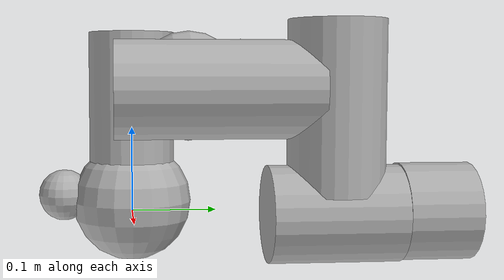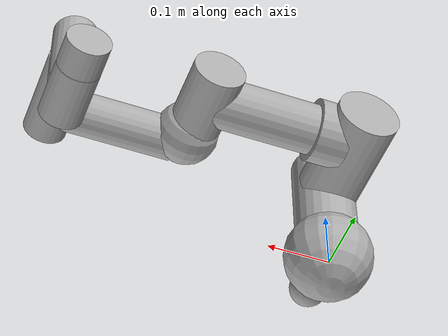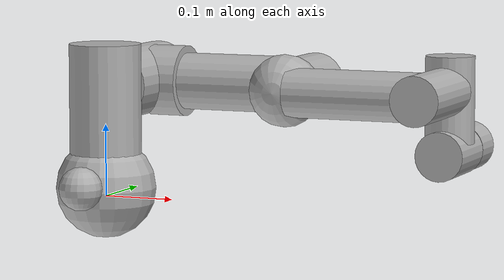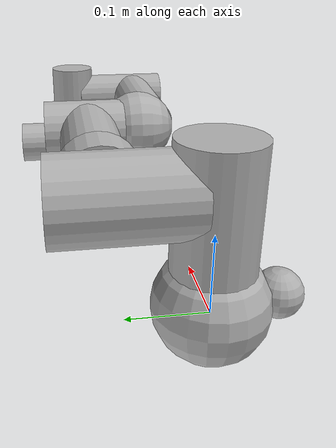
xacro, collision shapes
<?xml version="1.0"?>
<robot xmlns:xacro="http://ros.org/wiki/xacro"
       name="ur3e" >

  <!--
  Per https://github.com/ros-industrial/universal_robot/blob/melodic-devel/ur_description/package.xml
  the ur_description package from which these files are derived is BSD licensed.
-->

  <!-- ur3e -->
  <xacro:include filename="ur3e.urdf.xacro" />

  <!-- arm -->
  <!-- Do not limit all collision shapes to be spheres -->
  <!-- We limit joint limits to [-pi, pi] rather than the full range [-2pi, 2pi]
       since the larger limits cause problems with planning. -->
  <xacro:ur3e_robot prefix="ur_" joint_limited="true"
  sphere_only_collision_shapes="false" />
</robot>

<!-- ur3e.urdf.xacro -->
<robot xmlns:xacro="http://ros.org/wiki/xacro" xmlns:drake="https://drake.mit.edu">

<!--
  TODO(calderpg-tri, sammy-tri, ggould-tri) The acceleration limits in this
  file are wrong. Try to find the right value.
-->

  <xacro:include filename="ur.transmission.xacro" />

   <xacro:macro name="cylinder_inertial" params="radius length mass *origin">
    <inertial>
      <mass value="${mass}" />
      <xacro:insert_block name="origin" />
      <inertia ixx="${0.0833333 * mass * (3 * radius * radius + length * length)}" ixy="0.0" ixz="0.0"
        iyy="${0.0833333 * mass * (3 * radius * radius + length * length)}" iyz="0.0"
        izz="${0.5 * mass * radius * radius}" />
    </inertial>
  </xacro:macro>

  <xacro:macro name="ur3e_robot" params="prefix joint_limited
    shoulder_pan_lower_limit:=${-pi}    shoulder_pan_upper_limit:=${pi}
    shoulder_lift_lower_limit:=${-pi}    shoulder_lift_upper_limit:=${pi}
    elbow_joint_lower_limit:=${-pi}    elbow_joint_upper_limit:=${pi}
    wrist_1_lower_limit:=${-pi}    wrist_1_upper_limit:=${pi}
    wrist_2_lower_limit:=${-pi}    wrist_2_upper_limit:=${pi}
    wrist_3_lower_limit:=${-pi}    wrist_3_upper_limit:=${pi}
    transmission_hw_interface:=hardware_interface/PositionJointInterface
    safety_limits:=false safety_pos_margin:=0.15
    safety_k_position:=20
    sphere_only_collision_shapes:=False">

    <!-- Inertia parameters -->
    <xacro:property name="base_mass" value="2.0" />  <!-- This mass might be incorrect -->
    <xacro:property name="shoulder_mass" value="2.0" />
    <xacro:property name="upper_arm_mass" value="3.42" />
    <xacro:property name="forearm_mass" value="1.26" />
    <xacro:property name="wrist_1_mass" value="0.8" />
    <xacro:property name="wrist_2_mass" value="0.8" />
    <xacro:property name="wrist_3_mass" value="0.35" />

    <xacro:property name="shoulder_cog" value="0.0 -0.02 0.0" />
    <xacro:property name="upper_arm_cog" value="0.13 0.0 0.1157" />
    <xacro:property name="forearm_cog" value="0.05 0.0 0.0238" />
    <xacro:property name="wrist_1_cog" value="0.0 0.0 0.01" />
    <xacro:property name="wrist_2_cog" value="0.0 0.0 0.01" />
    <xacro:property name="wrist_3_cog" value="0.0 0.0 -0.02" />

    <!-- Kinematic model -->
    <!-- Properties from urcontrol.conf -->
    <xacro:property name="d1" value="0.152" />
    <xacro:property name="a2" value="-0.244" />
    <xacro:property name="a3" value="-0.213" />
    <xacro:property name="d4" value="0.104" />
    <xacro:property name="d5" value="0.085" />
    <xacro:property name="d6" value="0.092" />

    <!-- Arbitrary offsets for shoulder/elbow joints -->
    <xacro:property name="shoulder_offset" value="0.120" />  <!-- measured from model -->
    <xacro:property name="elbow_offset" value="-0.093" /> <!-- measured from model -->

    <!-- link lengths used in model -->
    <xacro:property name="shoulder_height" value="${d1}" />
    <xacro:property name="upper_arm_length" value="${-a2}" />
    <xacro:property name="forearm_length" value="${-a3}" />
    <xacro:property name="wrist_1_length" value="${d4}" />
    <xacro:property name="wrist_2_length" value="${d5}" />
    <xacro:property name="wrist_3_length" value="${d6}" />

    <link name="${prefix}base_link" >
      <visual>
        <origin rpy="0 0 0" xyz="0.0 0.0 0.0"/>
        <geometry>
          <mesh filename="base.obj"/>
        </geometry>
        <material name="LightGrey">
          <color rgba="0.7 0.7 0.7 1.0"/>
        </material>
      </visual>
      <xacro:if value="${sphere_only_collision_shapes}">
        <!-- Base joint -->
        <collision>
          <origin rpy="0 0 0" xyz="0.0 0.0 0.0"/>
          <geometry>
            <sphere radius="0.065"/>
          </geometry>
        </collision>
        <collision>
          <origin rpy="0 0 0" xyz="0.0 0.0 0.02"/>
          <geometry>
            <sphere radius="0.065"/>
          </geometry>
        </collision>
        <collision>
          <origin rpy="0 0 0" xyz="0.0 0.0 0.07"/>
          <geometry>
            <sphere radius="0.055"/>
          </geometry>
        </collision>
        <!-- Cable connector -->
        <collision>
          <origin rpy="0 0 0" xyz="0.0 -0.08 0.02"/>
          <geometry>
            <sphere radius="0.03"/>
          </geometry>
        </collision>
      </xacro:if>
      <xacro:unless value="${sphere_only_collision_shapes}">
        <!-- Base joint -->
        <collision>
          <origin rpy="0 0 0" xyz="0.0 0.0 0.012"/>
          <geometry>
            <sphere radius="0.07"/>
          </geometry>
        </collision>
        <!-- Cable connector -->
        <collision>
          <origin rpy="0 0 0" xyz="0.0 -0.08 0.02"/>
          <geometry>
            <sphere radius="0.03"/>
          </geometry>
        </collision>
      </xacro:unless>
      <xacro:cylinder_inertial radius="0.075" length="0.038" mass="${base_mass}">
        <origin xyz="0.0 0.0 0.0" rpy="0 0 0" />
      </xacro:cylinder_inertial>
    </link>

    <joint name="${prefix}shoulder_pan_joint" type="revolute">
      <parent link="${prefix}base_link" />
      <child link = "${prefix}shoulder_link" />
      <origin xyz="0.0 0.0 ${shoulder_height}" rpy="0.0 0.0 0.0" />
      <axis xyz="0 0 1" />
      <xacro:unless value="${joint_limited}">
        <limit lower="${-2.0 * pi}" upper="${2.0 * pi}" effort="330.0" velocity="3.14" drake:acceleration="2.5"/>
        <xacro:if value="${safety_limits}">
          <safety_controller soft_lower_limit="${-2.0 * pi + safety_pos_margin}" soft_upper_limit="${2.0 * pi - safety_pos_margin}" k_position="${safety_k_position}" k_velocity="0.0"/>
        </xacro:if>
      </xacro:unless>
      <xacro:if value="${joint_limited}">
        <limit lower="${shoulder_pan_lower_limit}" upper="${shoulder_pan_upper_limit}" effort="330.0" velocity="3.14" drake:acceleration="2.5"/>
        <xacro:if value="${safety_limits}">
          <safety_controller soft_lower_limit="${shoulder_pan_lower_limit + safety_pos_margin}" soft_upper_limit="${shoulder_pan_upper_limit - safety_pos_margin}" k_position="${safety_k_position}" k_velocity="0.0"/>
        </xacro:if>
      </xacro:if>
      <dynamics damping="0.0" friction="0.0"/>
    </joint>

    <link name="${prefix}shoulder_link">
      <visual>
        <origin rpy="0 0 0" xyz="0.0 0.0 0.0"/>
        <geometry>
          <mesh filename="shoulder.obj"/>
        </geometry>
        <material name="LightGrey">
          <color rgba="0.7 0.7 0.7 1.0"/>
        </material>
      </visual>
      <xacro:if value="${sphere_only_collision_shapes}">
        <collision>
          <origin rpy="0 0 0" xyz="0.0 0.01 0.00"/>
          <geometry>
            <sphere radius="0.07"/>
          </geometry>
        </collision>
        <collision>
          <origin rpy="0 0 0" xyz="0.0 0.06 0.00"/>
          <geometry>
            <sphere radius="0.0525"/>
          </geometry>
        </collision>
        <collision>
          <origin rpy="0 0 0" xyz="0.0 0.11 0.00"/>
          <geometry>
            <sphere radius="0.0525"/>
          </geometry>
        </collision>
      </xacro:if>
      <xacro:unless value="${sphere_only_collision_shapes}">
        <collision>
          <origin rpy="0 0 0" xyz="0.0 0.0 -0.02"/>
          <geometry>
            <cylinder radius="0.05" length="0.16"/>
          </geometry>
        </collision>
      </xacro:unless>
      <xacro:cylinder_inertial radius="0.075" length="0.178" mass="${shoulder_mass}">
        <origin xyz="0.0 0.0 0.0" rpy="0 0 0" />
      </xacro:cylinder_inertial>
    </link>

    <joint name="${prefix}shoulder_lift_joint" type="revolute">
      <parent link="${prefix}shoulder_link" />
      <child link = "${prefix}upper_arm_link" />
      <origin xyz="0.0 ${shoulder_offset} 0.0" rpy="0.0 ${pi / 2.0} 0.0" />
      <axis xyz="0 1 0" />
      <xacro:unless value="${joint_limited}">
        <limit lower="${-2.0 * pi}" upper="${2.0 * pi}" effort="330.0" velocity="3.14" drake:acceleration="2.5"/>
        <xacro:if value="${safety_limits}">
          <safety_controller soft_lower_limit="${-2.0 * pi + safety_pos_margin}" soft_upper_limit="${2.0 * pi - safety_pos_margin}" k_position="${safety_k_position}" k_velocity="0.0"/>
        </xacro:if>
      </xacro:unless>
      <xacro:if value="${joint_limited}">
        <limit lower="${shoulder_lift_lower_limit}" upper="${shoulder_lift_upper_limit}" effort="330.0" velocity="3.14" drake:acceleration="2.5"/>
        <xacro:if value="${safety_limits}">
          <safety_controller soft_lower_limit="${shoulder_lift_lower_limit + safety_pos_margin}" soft_upper_limit="${shoulder_lift_upper_limit - safety_pos_margin}" k_position="${safety_k_position}" k_velocity="0.0"/>
        </xacro:if>
      </xacro:if>
      <dynamics damping="0.0" friction="0.0"/>
    </joint>

    <link name="${prefix}upper_arm_link">
      <visual>
        <origin rpy="0 0 0" xyz="0.0 0.0 0.0"/>
        <geometry>
          <mesh filename="upperarm.obj"/>
        </geometry>
        <material name="LightGrey">
          <color rgba="0.7 0.7 0.7 1.0"/>
        </material>
      </visual>
      <xacro:if value="${sphere_only_collision_shapes}">
        <collision>
          <origin rpy="0 0 0" xyz="0.0 0.02 0.01"/>
          <geometry>
            <sphere radius="0.06"/>
          </geometry>
        </collision>
        <collision>
          <origin rpy="0 0 0" xyz="0.0 0.00 0.05"/>
          <geometry>
            <sphere radius="0.05"/>
          </geometry>
        </collision>
        <collision>
          <origin rpy="0 0 0" xyz="0.0 0.00 0.09"/>
          <geometry>
            <sphere radius="0.04"/>
          </geometry>
        </collision>
        <collision>
          <origin rpy="0 0 0" xyz="0.0 0.00 0.12"/>
          <geometry>
            <sphere radius="0.04"/>
          </geometry>
        </collision>
        <collision>
          <origin rpy="0 0 0" xyz="0.0 0.00 0.15"/>
          <geometry>
            <sphere radius="0.04"/>
          </geometry>
        </collision>
        <collision>
          <origin rpy="0 0 0" xyz="0.0 0.00 0.18"/>
          <geometry>
            <sphere radius="0.04"/>
          </geometry>
        </collision>
        <collision>
          <origin rpy="0 0 0" xyz="0.0 0.00 0.21"/>
          <geometry>
            <sphere radius="0.045"/>
          </geometry>
        </collision>
        <collision>
          <origin rpy="0 0 0" xyz="0.0 0.02 ${upper_arm_length - 0.005}"/>
          <geometry>
            <sphere radius="0.05"/>
          </geometry>
        </collision>
        <collision>
          <origin rpy="0 0 0" xyz="0.0 -0.02 ${upper_arm_length - 0.005}"/>
          <geometry>
            <sphere radius="0.05"/>
          </geometry>
        </collision>
      </xacro:if>
      <xacro:unless value="${sphere_only_collision_shapes}">
        <collision>
          <origin rpy="${pi/2.0} 0 0" xyz="0.0 -0.02 0.0"/>
          <geometry>
            <cylinder radius="0.05" length="0.16"/>
          </geometry>
        </collision>
        <collision>
          <origin rpy="0 0 0" xyz="0.0 0.0 0.045"/>
          <geometry>
            <cylinder radius="0.05" length="0.051"/>
          </geometry>
        </collision>
        <collision>
          <origin rpy="0 0 0" xyz="0.0 0.0 ${upper_arm_length/2.0 + 0.005}"/>
          <geometry>
            <cylinder radius="0.04" length="0.21"/>
          </geometry>
        </collision>
        <collision>
          <origin rpy="${pi/2.0} 0 0" xyz="0.0 0.005 ${upper_arm_length - 0.001}"/>
          <geometry>
            <cylinder radius="0.041" length="0.11"/>
          </geometry>
        </collision>
      </xacro:unless>
      <xacro:cylinder_inertial radius="0.075" length="${-a2}" mass="${upper_arm_mass}">
        <origin xyz="0.0 0.0 ${-a2/2.0}" rpy="0 0 0" />
      </xacro:cylinder_inertial>
    </link>

    <joint name="${prefix}elbow_joint" type="revolute">
      <parent link="${prefix}upper_arm_link" />
      <child link = "${prefix}forearm_link" />
      <origin xyz="0.0 ${elbow_offset} ${upper_arm_length}" rpy="0.0 0.0 0.0" />
      <axis xyz="0 1 0" />
      <xacro:unless value="${joint_limited}">
        <limit lower="${-pi}" upper="${pi}" effort="150.0" velocity="3.14" drake:acceleration="2.5"/>
        <xacro:if value="${safety_limits}">
          <safety_controller soft_lower_limit="${-2.0 * pi + safety_pos_margin}" soft_upper_limit="${2.0 * pi - safety_pos_margin}" k_position="${safety_k_position}" k_velocity="0.0"/>
        </xacro:if>
      </xacro:unless>
      <xacro:if value="${joint_limited}">
        <limit lower="${elbow_joint_lower_limit}" upper="${elbow_joint_upper_limit}" effort="150.0" velocity="3.14" drake:acceleration="2.5"/>
        <xacro:if value="${safety_limits}">
          <safety_controller soft_lower_limit="${elbow_joint_lower_limit + safety_pos_margin}" soft_upper_limit="${elbow_joint_upper_limit - safety_pos_margin}" k_position="${safety_k_position}" k_velocity="0.0"/>
        </xacro:if>
      </xacro:if>
      <dynamics damping="0.0" friction="0.0"/>
    </joint>

    <link name="${prefix}forearm_link">
      <visual>
        <origin rpy="0 0 0" xyz="0.0 0.0 0.0"/>
        <geometry>
          <mesh filename="forearm.obj"/>
        </geometry>
        <material name="LightGrey">
          <color rgba="0.7 0.7 0.7 1.0"/>
        </material>
      </visual>
      <xacro:if value="${sphere_only_collision_shapes}">
        <collision>
          <origin rpy="0 0 0" xyz="0.0 0.03 0.00"/>
          <geometry>
            <sphere radius="0.04"/>
          </geometry>
        </collision>
        <collision>
          <origin rpy="0 0 0" xyz="0.0 0.0 0.02"/>
          <geometry>
            <sphere radius="0.04"/>
          </geometry>
        </collision>
        <collision>
          <origin rpy="0 0 0" xyz="0.0 0.0 0.05"/>
          <geometry>
            <sphere radius="0.035"/>
          </geometry>
        </collision>
        <collision>
          <origin rpy="0 0 0" xyz="0.0 0.0 0.075"/>
          <geometry>
            <sphere radius="0.03"/>
          </geometry>
        </collision>
        <collision>
          <origin rpy="0 0 0" xyz="0.0 0.0 0.095"/>
          <geometry>
            <sphere radius="0.03"/>
          </geometry>
        </collision>
        <collision>
          <origin rpy="0 0 0" xyz="0.0 0.0 0.115"/>
          <geometry>
            <sphere radius="0.03"/>
          </geometry>
        </collision>
        <collision>
          <origin rpy="0 0 0" xyz="0.0 0.0 0.135"/>
          <geometry>
            <sphere radius="0.03"/>
          </geometry>
        </collision>
        <collision>
          <origin rpy="0 0 0" xyz="0.0 0.0 0.155"/>
          <geometry>
            <sphere radius="0.03"/>
          </geometry>
        </collision>
        <collision>
          <origin rpy="0 0 0" xyz="0.0 0.0 0.18"/>
          <geometry>
            <sphere radius="0.035"/>
          </geometry>
        </collision>
        <collision>
          <origin rpy="0 0 0" xyz="0.0 -0.02 0.2125"/>
          <geometry>
            <sphere radius="0.0375"/>
          </geometry>
        </collision>
        <collision>
          <origin rpy="0 0 0" xyz="0.0 0.00 0.2125"/>
          <geometry>
            <sphere radius="0.0375"/>
          </geometry>
        </collision>
        <collision>
          <origin rpy="0 0 0" xyz="0.0 0.02 0.2125"/>
          <geometry>
            <sphere radius="0.0375"/>
          </geometry>
        </collision>
        <collision>
          <origin rpy="0 0 0" xyz="0.0 0.03 0.2125"/>
          <geometry>
            <sphere radius="0.0375"/>
          </geometry>
        </collision>
      </xacro:if>
      <xacro:unless value="${sphere_only_collision_shapes}">
        <collision>
          <origin rpy="${pi/2.0} 0 0" xyz="0.0 0.02 0.005"/>
          <geometry>
            <sphere radius="0.05"/>
          </geometry>
        </collision>
        <collision>
          <origin rpy="0 0 0" xyz="0.0 0.0 ${forearm_length/2.0 + 0.005}"/>
          <geometry>
            <cylinder radius="0.034" length="0.185"/>
          </geometry>
        </collision>
        <collision>
          <origin rpy="${pi/2.0} 0 0" xyz="0.0 0.022 ${forearm_length}"/>
          <geometry>
            <cylinder radius="0.034" length="0.14"/>
          </geometry>
        </collision>
      </xacro:unless>
      <xacro:cylinder_inertial radius="0.075" length="${-a3}" mass="${forearm_mass}">
        <origin xyz="0.0 0.0 ${-a3/2.0}" rpy="0 0 0" />
      </xacro:cylinder_inertial>
    </link>

    <joint name="${prefix}wrist_1_joint" type="revolute">
      <parent link="${prefix}forearm_link" />
      <child link = "${prefix}wrist_1_link" />
      <origin xyz="0.0 0.0 ${forearm_length}" rpy="0.0 ${pi / 2.0} 0.0" />
      <axis xyz="0 1 0" />
      <xacro:unless value="${joint_limited}">
        <limit lower="${-2.0 * pi}" upper="${2.0 * pi}" effort="54.0" velocity="6.28" drake:acceleration="2.5"/>
        <xacro:if value="${safety_limits}">
          <safety_controller soft_lower_limit="${-2.0 * pi + safety_pos_margin}" soft_upper_limit="${2.0 * pi - safety_pos_margin}" k_position="${safety_k_position}" k_velocity="0.0"/>
        </xacro:if>
      </xacro:unless>
      <xacro:if value="${joint_limited}">
        <limit lower="${wrist_1_lower_limit}" upper="${wrist_1_upper_limit}" effort="54.0" velocity="6.28" drake:acceleration="2.5"/>
        <xacro:if value="${safety_limits}">
          <safety_controller soft_lower_limit="${wrist_1_lower_limit + safety_pos_margin}" soft_upper_limit="${wrist_1_upper_limit - safety_pos_margin}" k_position="${safety_k_position}" k_velocity="0.0"/>
        </xacro:if>
      </xacro:if>
      <dynamics damping="0.0" friction="0.0"/>
    </joint>

    <link name="${prefix}wrist_1_link">
      <visual>
        <origin rpy="0 0 0" xyz="0.0 0.0 0.0"/>
        <geometry>
          <mesh filename="wrist1.obj"/>
        </geometry>
        <material name="LightGrey">
          <color rgba="0.7 0.7 0.7 1.0"/>
        </material>
      </visual>
      <xacro:if value="${sphere_only_collision_shapes}">
        <collision>
          <origin rpy="0 0 0" xyz="0.0 0.05 0.0"/>
          <geometry>
            <sphere radius="0.0375"/>
          </geometry>
        </collision>
        <collision>
          <origin rpy="0 0 0" xyz="0.0 0.075 0.0"/>
          <geometry>
            <sphere radius="0.0375"/>
          </geometry>
        </collision>
        <collision>
          <origin rpy="0 0 0" xyz="0.0 0.1 0.0"/>
          <geometry>
            <sphere radius="0.0375"/>
          </geometry>
        </collision>
        <collision>
          <origin rpy="0 0 0" xyz="0.0 0.1 -0.025"/>
          <geometry>
            <sphere radius="0.0375"/>
          </geometry>
        </collision>
        <collision>
          <origin rpy="0 0 0" xyz="0.0 0.105 0.0275"/>
          <geometry>
            <sphere radius="0.0375"/>
          </geometry>
        </collision>
      </xacro:if>
      <xacro:unless value="${sphere_only_collision_shapes}">
        <collision>
          <origin rpy="0 0 0" xyz="0.0 0.105 0.012"/>
          <geometry>
            <cylinder radius="0.034" length="0.12"/>
          </geometry>
        </collision>
      </xacro:unless>
      <xacro:cylinder_inertial radius="0.075" length="0.12" mass="${wrist_1_mass}">
        <origin xyz="0.0 ${wrist_1_length} 0.0" rpy="0 0 0" />
      </xacro:cylinder_inertial>
    </link>

    <joint name="${prefix}wrist_2_joint" type="revolute">
      <parent link="${prefix}wrist_1_link" />
      <child link = "${prefix}wrist_2_link" />
      <origin xyz="0.0 ${wrist_1_length} 0.0" rpy="0.0 0.0 0.0" />
      <axis xyz="0 0 1" />
      <xacro:unless value="${joint_limited}">
        <limit lower="${-2.0 * pi}" upper="${2.0 * pi}" effort="54.0" velocity="6.28" drake:acceleration="2.5"/>
        <xacro:if value="${safety_limits}">
          <safety_controller soft_lower_limit="${-2.0 * pi + safety_pos_margin}" soft_upper_limit="${2.0 * pi - safety_pos_margin}" k_position="${safety_k_position}" k_velocity="0.0"/>
        </xacro:if>
      </xacro:unless>
      <xacro:if value="${joint_limited}">
        <limit lower="${wrist_2_lower_limit}" upper="${wrist_2_upper_limit}" effort="54.0" velocity="6.28" drake:acceleration="2.5"/>
        <xacro:if value="${safety_limits}">
          <safety_controller soft_lower_limit="${wrist_2_lower_limit + safety_pos_margin}" soft_upper_limit="${wrist_2_upper_limit - safety_pos_margin}" k_position="${safety_k_position}" k_velocity="0.0"/>
        </xacro:if>
      </xacro:if>
      <dynamics damping="0.0" friction="0.0"/>
    </joint>

    <link name="${prefix}wrist_2_link">
      <origin rpy="${pi / 2} 0 0" xyz="0.0 0.0 0.0"/>
      <visual>
        <origin rpy="0 0 0" xyz="0.0 0.0 0.0"/>
        <geometry>
          <mesh filename="wrist2.obj"/>
        </geometry>
        <material name="LightGrey">
          <color rgba="0.7 0.7 0.7 1.0"/>
        </material>
      </visual>
      <xacro:if value="${sphere_only_collision_shapes}">
        <collision>
          <origin rpy="0 0 0" xyz="0.0 0.0 0.07"/>
          <geometry>
            <sphere radius="0.04"/>
          </geometry>
        </collision>
        <collision>
          <origin rpy="0 0 0" xyz="0.0 -0.02 0.085"/>
          <geometry>
            <sphere radius="0.0375"/>
          </geometry>
        </collision>
        <collision>
          <origin rpy="0 0 0" xyz="0.0 0.0 0.085"/>
          <geometry>
            <sphere radius="0.0375"/>
          </geometry>
        </collision>
        <collision>
          <origin rpy="0 0 0" xyz="0.0 0.02 0.085"/>
          <geometry>
            <sphere radius="0.0375"/>
          </geometry>
        </collision>
        <collision>
          <origin rpy="0 0 0" xyz="0.0 0.04 0.085"/>
          <geometry>
            <sphere radius="0.0375"/>
          </geometry>
        </collision>
      </xacro:if>
      <xacro:unless value="${sphere_only_collision_shapes}">
        <collision>
          <origin rpy="${pi/2} 0 0" xyz="0.0 -0.001 0.086"/>
          <geometry>
            <cylinder radius="0.034" length="0.092"/>
          </geometry>
        </collision>
      </xacro:unless>
      <xacro:cylinder_inertial radius="0.075" length="0.12" mass="${wrist_2_mass}">
        <origin xyz="0.0 0.0 ${wrist_2_length}" rpy="0 0 0" />
      </xacro:cylinder_inertial>
    </link>

    <joint name="${prefix}wrist_3_joint" type="revolute">
      <parent link="${prefix}wrist_2_link" />
      <child link = "${prefix}wrist_3_link" />
      <origin xyz="0.0 0.0 ${wrist_2_length}" rpy="0.0 0.0 0.0" />
      <axis xyz="0 1 0" />
      <xacro:unless value="${joint_limited}">
        <limit lower="${-2.0 * pi}" upper="${2.0 * pi}" effort="54.0" velocity="6.28" drake:acceleration="2.5"/>
        <xacro:if value="${safety_limits}">
          <safety_controller soft_lower_limit="${-2.0 * pi + safety_pos_margin}" soft_upper_limit="${2.0 * pi - safety_pos_margin}" k_position="${safety_k_position}" k_velocity="0.0"/>
        </xacro:if>
      </xacro:unless>
      <xacro:if value="${joint_limited}">
        <limit lower="${wrist_3_lower_limit}" upper="${wrist_3_upper_limit}" effort="54.0" velocity="6.28" drake:acceleration="2.5"/>
        <xacro:if value="${safety_limits}">
          <safety_controller soft_lower_limit="${wrist_3_lower_limit + safety_pos_margin}" soft_upper_limit="${wrist_3_upper_limit - safety_pos_margin}" k_position="${safety_k_position}" k_velocity="0.0"/>
        </xacro:if>
      </xacro:if>
      <dynamics damping="0.0" friction="0.0"/>
    </joint>

    <link name="${prefix}wrist_3_link">
      <visual>
        <origin rpy="0 0 0" xyz="0.0 0.0 0.0"/>
        <geometry>
          <mesh filename="wrist3.obj"/>
        </geometry>
        <material name="LightGrey">
          <color rgba="0.7 0.7 0.7 1.0"/>
        </material>
      </visual>
      <xacro:if value="${sphere_only_collision_shapes}">
        <collision>
          <origin rpy="0 0 0" xyz="0.0 0.07 0.0"/>
          <geometry>
            <sphere radius="0.02"/>
          </geometry>
        </collision>
      </xacro:if>
      <xacro:unless value="${sphere_only_collision_shapes}">
        <collision>
          <origin rpy="${pi/2} 0 0" xyz="0.0 0.07 0.0"/>
          <geometry>
            <cylinder radius="0.034" length="0.05"/>
          </geometry>
        </collision>
      </xacro:unless>
      <xacro:cylinder_inertial radius="0.032" length="0.042" mass="${wrist_3_mass}">
        <origin xyz="0.0 ${wrist_3_length - 0.021} 0.0" rpy="${pi/2} 0 0" />
      </xacro:cylinder_inertial>
    </link>

    <joint name="${prefix}ee_fixed_joint" type="fixed">
      <parent link="${prefix}wrist_3_link" />
      <child link = "${prefix}ee_link" />
      <origin xyz="0.0 ${wrist_3_length} 0.0" rpy="0.0 0.0 ${pi/2.0}" />
    </joint>

    <link name="${prefix}ee_link"/>

    <xacro:ur_arm_transmission prefix="${prefix}" />

    <!-- ROS base_link to UR 'Base' Coordinates transform -->
    <link name="${prefix}base"/>
    <joint name="${prefix}base_link-base_fixed_joint" type="fixed">
      <!-- NOTE: this rotation is only needed as long as base_link itself is
                 not corrected wrt the real robot (ie: rotated over 180
                 degrees)
      -->
      <origin xyz="0 0 0" rpy="0 0 ${-pi}"/>
      <parent link="${prefix}base_link"/>
      <child link="${prefix}base"/>
    </joint>

    <!-- Frame coincident with all-zeros TCP on UR controller -->
    <link name="${prefix}tool0"/>
    <joint name="${prefix}wrist_3_link-tool0_fixed_joint" type="fixed">
      <origin xyz="0 ${wrist_3_length} 0" rpy="${pi/-2.0} 0 0"/>
      <parent link="${prefix}wrist_3_link"/>
      <child link="${prefix}tool0"/>
    </joint>

  </xacro:macro>
</robot>
